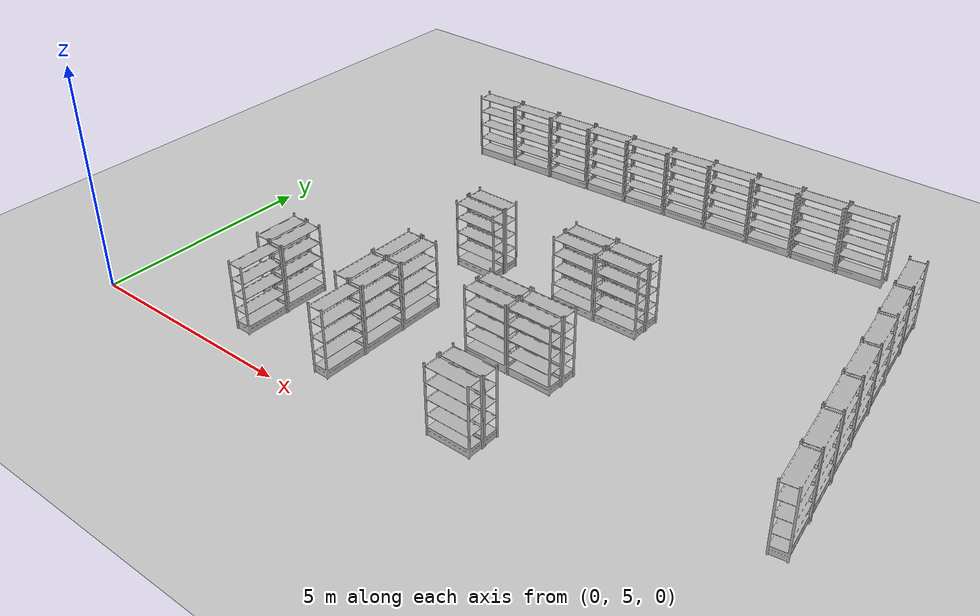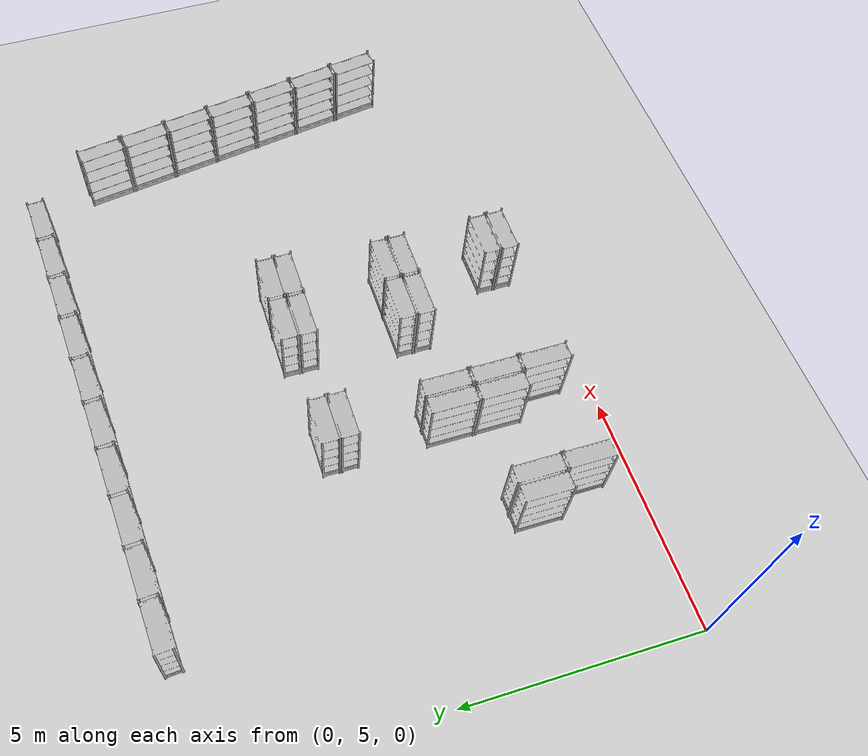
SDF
<sdf version="1.6">
 <world name="default">
  <model name="ground_plane">
   <static>1</static>
   <link name="link">
    <collision name="collision">
     <geometry><plane><normal>0 0 1</normal><size>100 100</size></plane></geometry>
     <surface>
      <contact><collide_bitmask>65535</collide_bitmask></contact>
      <friction><ode><mu>1000</mu><mu2>1000</mu2></ode></friction>
     </surface>
    </collision>
    <visual name="visual">
     <cast_shadows>0</cast_shadows>
     <geometry><plane><normal>0 0 1</normal><size>100 100</size></plane></geometry>
     <material>
      <script><uri>file://media/materials/scripts/gazebo.material</uri><name>Gazebo/Grey</name></script>
     </material>
    </visual>
   </link>
  </model>
  <model name="store_shelf_moduled_16">
   <link name="link">
    <collision name="collision">
     <geometry><mesh><uri>model://store_shelf_moduled/meshes/store_shelf_moduled.dae</uri></mesh></geometry>
    </collision>
    <visual name="visual">
     <geometry><mesh><uri>model://store_shelf_moduled/meshes/store_shelf_moduled.dae</uri></mesh></geometry>
    </visual>
    <inertial>
     <mass>1000</mass>
     <inertia>
      <ixx>840083</ixx>
      <ixy>0</ixy>
      <ixz>0</ixz>
      <iyy>475500</iyy>
      <iyz>0</iyz>
      <izz>1.30208e+06</izz>
     </inertia>
    </inertial>
   </link>
   <static>1</static>
   <pose>14.93118 7.014704 0 0 0 1.724357</pose>
  </model>
  <model name="store_shelf_moduled_17">
   <link name="link">
    <collision name="collision">
     <geometry><mesh><uri>model://store_shelf_moduled/meshes/store_shelf_moduled.dae</uri></mesh></geometry>
    </collision>
    <visual name="visual">
     <geometry><mesh><uri>model://store_shelf_moduled/meshes/store_shelf_moduled.dae</uri></mesh></geometry>
    </visual>
    <inertial>
     <mass>1000</mass>
     <inertia>
      <ixx>840083</ixx>
      <ixy>0</ixy>
      <ixz>0</ixz>
      <iyy>475500</iyy>
      <iyz>0</iyz>
      <izz>1.30208e+06</izz>
     </inertia>
    </inertial>
   </link>
   <static>1</static>
   <pose>14.77118 8.064704 0 0 0 1.724357</pose>
  </model>
  <model name="store_shelf_moduled_18">
   <link name="link">
    <collision name="collision">
     <geometry><mesh><uri>model://store_shelf_moduled/meshes/store_shelf_moduled.dae</uri></mesh></geometry>
    </collision>
    <visual name="visual">
     <geometry><mesh><uri>model://store_shelf_moduled/meshes/store_shelf_moduled.dae</uri></mesh></geometry>
    </visual>
    <inertial>
     <mass>1000</mass>
     <inertia>
      <ixx>840083</ixx>
      <ixy>0</ixy>
      <ixz>0</ixz>
      <iyy>475500</iyy>
      <iyz>0</iyz>
      <izz>1.30208e+06</izz>
     </inertia>
    </inertial>
   </link>
   <static>1</static>
   <pose>14.61118 9.114704 0 0 0 1.724357</pose>
  </model>
  <model name="store_shelf_moduled_19">
   <link name="link">
    <collision name="collision">
     <geometry><mesh><uri>model://store_shelf_moduled/meshes/store_shelf_moduled.dae</uri></mesh></geometry>
    </collision>
    <visual name="visual">
     <geometry><mesh><uri>model://store_shelf_moduled/meshes/store_shelf_moduled.dae</uri></mesh></geometry>
    </visual>
    <inertial>
     <mass>1000</mass>
     <inertia>
      <ixx>840083</ixx>
      <ixy>0</ixy>
      <ixz>0</ixz>
      <iyy>475500</iyy>
      <iyz>0</iyz>
      <izz>1.30208e+06</izz>
     </inertia>
    </inertial>
   </link>
   <static>1</static>
   <pose>14.45118 10.1647 0 0 0 1.724357</pose>
  </model>
  <model name="store_shelf_moduled_20">
   <link name="link">
    <collision name="collision">
     <geometry><mesh><uri>model://store_shelf_moduled/meshes/store_shelf_moduled.dae</uri></mesh></geometry>
    </collision>
    <visual name="visual">
     <geometry><mesh><uri>model://store_shelf_moduled/meshes/store_shelf_moduled.dae</uri></mesh></geometry>
    </visual>
    <inertial>
     <mass>1000</mass>
     <inertia>
      <ixx>840083</ixx>
      <ixy>0</ixy>
      <ixz>0</ixz>
      <iyy>475500</iyy>
      <iyz>0</iyz>
      <izz>1.30208e+06</izz>
     </inertia>
    </inertial>
   </link>
   <static>1</static>
   <pose>14.29118 11.2047 0 0 0 1.724357</pose>
  </model>
  <model name="store_shelf_moduled_21">
   <link name="link">
    <collision name="collision">
     <geometry><mesh><uri>model://store_shelf_moduled/meshes/store_shelf_moduled.dae</uri></mesh></geometry>
    </collision>
    <visual name="visual">
     <geometry><mesh><uri>model://store_shelf_moduled/meshes/store_shelf_moduled.dae</uri></mesh></geometry>
    </visual>
    <inertial>
     <mass>1000</mass>
     <inertia>
      <ixx>840083</ixx>
      <ixy>0</ixy>
      <ixz>0</ixz>
      <iyy>475500</iyy>
      <iyz>0</iyz>
      <izz>1.30208e+06</izz>
     </inertia>
    </inertial>
   </link>
   <static>1</static>
   <pose>14.12118 12.2547 0 0 0 1.724357</pose>
  </model>
  <model name="store_shelf_moduled_22">
   <link name="link">
    <collision name="collision">
     <geometry><mesh><uri>model://store_shelf_moduled/meshes/store_shelf_moduled.dae</uri></mesh></geometry>
    </collision>
    <visual name="visual">
     <geometry><mesh><uri>model://store_shelf_moduled/meshes/store_shelf_moduled.dae</uri></mesh></geometry>
    </visual>
    <inertial>
     <mass>1000</mass>
     <inertia>
      <ixx>840083</ixx>
      <ixy>0</ixy>
      <ixz>0</ixz>
      <iyy>475500</iyy>
      <iyz>0</iyz>
      <izz>1.30208e+06</izz>
     </inertia>
    </inertial>
   </link>
   <static>1</static>
   <pose>13.96118 13.3047 0 0 0 1.724357</pose>
  </model>
  <model name="store_shelf_moduled_23">
   <link name="link">
    <collision name="collision">
     <geometry><mesh><uri>model://store_shelf_moduled/meshes/store_shelf_moduled.dae</uri></mesh></geometry>
    </collision>
    <visual name="visual">
     <geometry><mesh><uri>model://store_shelf_moduled/meshes/store_shelf_moduled.dae</uri></mesh></geometry>
    </visual>
    <inertial>
     <mass>1000</mass>
     <inertia>
      <ixx>840083</ixx>
      <ixy>0</ixy>
      <ixz>0</ixz>
      <iyy>475500</iyy>
      <iyz>0</iyz>
      <izz>1.30208e+06</izz>
     </inertia>
    </inertial>
   </link>
   <static>1</static>
   <pose>12.62632 15.6502 0 0 0 -3.078349</pose>
  </model>
  <model name="store_shelf_moduled_24">
   <link name="link">
    <collision name="collision">
     <geometry><mesh><uri>model://store_shelf_moduled/meshes/store_shelf_moduled.dae</uri></mesh></geometry>
    </collision>
    <visual name="visual">
     <geometry><mesh><uri>model://store_shelf_moduled/meshes/store_shelf_moduled.dae</uri></mesh></geometry>
    </visual>
    <inertial>
     <mass>1000</mass>
     <inertia>
      <ixx>840083</ixx>
      <ixy>0</ixy>
      <ixz>0</ixz>
      <iyy>475500</iyy>
      <iyz>0</iyz>
      <izz>1.30208e+06</izz>
     </inertia>
    </inertial>
   </link>
   <static>1</static>
   <pose>11.56632 15.5802 0 0 0 -3.078349</pose>
  </model>
  <model name="store_shelf_moduled_25">
   <link name="link">
    <collision name="collision">
     <geometry><mesh><uri>model://store_shelf_moduled/meshes/store_shelf_moduled.dae</uri></mesh></geometry>
    </collision>
    <visual name="visual">
     <geometry><mesh><uri>model://store_shelf_moduled/meshes/store_shelf_moduled.dae</uri></mesh></geometry>
    </visual>
    <inertial>
     <mass>1000</mass>
     <inertia>
      <ixx>840083</ixx>
      <ixy>0</ixy>
      <ixz>0</ixz>
      <iyy>475500</iyy>
      <iyz>0</iyz>
      <izz>1.30208e+06</izz>
     </inertia>
    </inertial>
   </link>
   <static>1</static>
   <pose>10.50632 15.5102 0 0 0 -3.078349</pose>
  </model>
  <model name="store_shelf_moduled_26">
   <link name="link">
    <collision name="collision">
     <geometry><mesh><uri>model://store_shelf_moduled/meshes/store_shelf_moduled.dae</uri></mesh></geometry>
    </collision>
    <visual name="visual">
     <geometry><mesh><uri>model://store_shelf_moduled/meshes/store_shelf_moduled.dae</uri></mesh></geometry>
    </visual>
    <inertial>
     <mass>1000</mass>
     <inertia>
      <ixx>840083</ixx>
      <ixy>0</ixy>
      <ixz>0</ixz>
      <iyy>475500</iyy>
      <iyz>0</iyz>
      <izz>1.30208e+06</izz>
     </inertia>
    </inertial>
   </link>
   <static>1</static>
   <pose>9.446321 15.4502 0 0 0 -3.078349</pose>
  </model>
  <model name="store_shelf_moduled_27">
   <link name="link">
    <collision name="collision">
     <geometry><mesh><uri>model://store_shelf_moduled/meshes/store_shelf_moduled.dae</uri></mesh></geometry>
    </collision>
    <visual name="visual">
     <geometry><mesh><uri>model://store_shelf_moduled/meshes/store_shelf_moduled.dae</uri></mesh></geometry>
    </visual>
    <inertial>
     <mass>1000</mass>
     <inertia>
      <ixx>840083</ixx>
      <ixy>0</ixy>
      <ixz>0</ixz>
      <iyy>475500</iyy>
      <iyz>0</iyz>
      <izz>1.30208e+06</izz>
     </inertia>
    </inertial>
   </link>
   <static>1</static>
   <pose>8.39632 15.3802 0 0 0 -3.078349</pose>
  </model>
  <model name="store_shelf_moduled_28">
   <link name="link">
    <collision name="collision">
     <geometry><mesh><uri>model://store_shelf_moduled/meshes/store_shelf_moduled.dae</uri></mesh></geometry>
    </collision>
    <visual name="visual">
     <geometry><mesh><uri>model://store_shelf_moduled/meshes/store_shelf_moduled.dae</uri></mesh></geometry>
    </visual>
    <inertial>
     <mass>1000</mass>
     <inertia>
      <ixx>840083</ixx>
      <ixy>0</ixy>
      <ixz>0</ixz>
      <iyy>475500</iyy>
      <iyz>0</iyz>
      <izz>1.30208e+06</izz>
     </inertia>
    </inertial>
   </link>
   <static>1</static>
   <pose>7.33632 15.3102 0 0 0 -3.078349</pose>
  </model>
  <model name="store_shelf_moduled_29">
   <link name="link">
    <collision name="collision">
     <geometry><mesh><uri>model://store_shelf_moduled/meshes/store_shelf_moduled.dae</uri></mesh></geometry>
    </collision>
    <visual name="visual">
     <geometry><mesh><uri>model://store_shelf_moduled/meshes/store_shelf_moduled.dae</uri></mesh></geometry>
    </visual>
    <inertial>
     <mass>1000</mass>
     <inertia>
      <ixx>840083</ixx>
      <ixy>0</ixy>
      <ixz>0</ixz>
      <iyy>475500</iyy>
      <iyz>0</iyz>
      <izz>1.30208e+06</izz>
     </inertia>
    </inertial>
   </link>
   <static>1</static>
   <pose>6.27632 15.2502 0 0 0 -3.078349</pose>
  </model>
  <model name="store_shelf_moduled_30">
   <link name="link">
    <collision name="collision">
     <geometry><mesh><uri>model://store_shelf_moduled/meshes/store_shelf_moduled.dae</uri></mesh></geometry>
    </collision>
    <visual name="visual">
     <geometry><mesh><uri>model://store_shelf_moduled/meshes/store_shelf_moduled.dae</uri></mesh></geometry>
    </visual>
    <inertial>
     <mass>1000</mass>
     <inertia>
      <ixx>840083</ixx>
      <ixy>0</ixy>
      <ixz>0</ixz>
      <iyy>475500</iyy>
      <iyz>0</iyz>
      <izz>1.30208e+06</izz>
     </inertia>
    </inertial>
   </link>
   <static>1</static>
   <pose>5.21632 15.1802 0 0 0 -3.078349</pose>
  </model>
  <model name="store_shelf_moduled_31">
   <link name="link">
    <collision name="collision">
     <geometry><mesh><uri>model://store_shelf_moduled/meshes/store_shelf_moduled.dae</uri></mesh></geometry>
    </collision>
    <visual name="visual">
     <geometry><mesh><uri>model://store_shelf_moduled/meshes/store_shelf_moduled.dae</uri></mesh></geometry>
    </visual>
    <inertial>
     <mass>1000</mass>
     <inertia>
      <ixx>840083</ixx>
      <ixy>0</ixy>
      <ixz>0</ixz>
      <iyy>475500</iyy>
      <iyz>0</iyz>
      <izz>1.30208e+06</izz>
     </inertia>
    </inertial>
   </link>
   <static>1</static>
   <pose>4.15632 15.1102 0 0 0 -3.078349</pose>
  </model>
  <model name="store_shelf_moduled_32">
   <link name="link">
    <collision name="collision">
     <geometry><mesh><uri>model://store_shelf_moduled/meshes/store_shelf_moduled.dae</uri></mesh></geometry>
    </collision>
    <visual name="visual">
     <geometry><mesh><uri>model://store_shelf_moduled/meshes/store_shelf_moduled.dae</uri></mesh></geometry>
    </visual>
    <inertial>
     <mass>1000</mass>
     <inertia>
      <ixx>840083</ixx>
      <ixy>0</ixy>
      <ixz>0</ixz>
      <iyy>475500</iyy>
      <iyz>0</iyz>
      <izz>1.30208e+06</izz>
     </inertia>
    </inertial>
   </link>
   <static>1</static>
   <pose>3.10632 15.0502 0 0 0 -3.078349</pose>
  </model>
  <model name="store_shelf_moduled_36">
   <link name="link">
    <collision name="collision">
     <geometry><mesh><uri>model://store_shelf_moduled/meshes/store_shelf_moduled.dae</uri></mesh></geometry>
    </collision>
    <visual name="visual">
     <geometry><mesh><uri>model://store_shelf_moduled/meshes/store_shelf_moduled.dae</uri></mesh></geometry>
    </visual>
    <inertial>
     <mass>1000</mass>
     <inertia>
      <ixx>840083</ixx>
      <ixy>0</ixy>
      <ixz>0</ixz>
      <iyy>475500</iyy>
      <iyz>0</iyz>
      <izz>1.30208e+06</izz>
     </inertia>
    </inertial>
   </link>
   <static>1</static>
   <pose>3.25 6.7 0 0 0 -1.570796</pose>
  </model>
  <model name="store_shelf_moduled_37">
   <link name="link">
    <collision name="collision">
     <geometry><mesh><uri>model://store_shelf_moduled/meshes/store_shelf_moduled.dae</uri></mesh></geometry>
    </collision>
    <visual name="visual">
     <geometry><mesh><uri>model://store_shelf_moduled/meshes/store_shelf_moduled.dae</uri></mesh></geometry>
    </visual>
    <inertial>
     <mass>1000</mass>
     <inertia>
      <ixx>840083</ixx>
      <ixy>0</ixy>
      <ixz>0</ixz>
      <iyy>475500</iyy>
      <iyz>0</iyz>
      <izz>1.30208e+06</izz>
     </inertia>
    </inertial>
   </link>
   <static>1</static>
   <pose>3.25 6.7 0 0 0 1.570796</pose>
  </model>
  <model name="store_shelf_moduled_38">
   <link name="link">
    <collision name="collision">
     <geometry><mesh><uri>model://store_shelf_moduled/meshes/store_shelf_moduled.dae</uri></mesh></geometry>
    </collision>
    <visual name="visual">
     <geometry><mesh><uri>model://store_shelf_moduled/meshes/store_shelf_moduled.dae</uri></mesh></geometry>
    </visual>
    <inertial>
     <mass>1000</mass>
     <inertia>
      <ixx>840083</ixx>
      <ixy>0</ixy>
      <ixz>0</ixz>
      <iyy>475500</iyy>
      <iyz>0</iyz>
      <izz>1.30208e+06</izz>
     </inertia>
    </inertial>
   </link>
   <static>1</static>
   <pose>3.25 7.76 0 0 0 -1.570796</pose>
  </model>
  <model name="store_shelf_moduled_39">
   <link name="link">
    <collision name="collision">
     <geometry><mesh><uri>model://store_shelf_moduled/meshes/store_shelf_moduled.dae</uri></mesh></geometry>
    </collision>
    <visual name="visual">
     <geometry><mesh><uri>model://store_shelf_moduled/meshes/store_shelf_moduled.dae</uri></mesh></geometry>
    </visual>
    <inertial>
     <mass>1000</mass>
     <inertia>
      <ixx>840083</ixx>
      <ixy>0</ixy>
      <ixz>0</ixz>
      <iyy>475500</iyy>
      <iyz>0</iyz>
      <izz>1.30208e+06</izz>
     </inertia>
    </inertial>
   </link>
   <static>1</static>
   <pose>5.09 10.66 0 0 0 0</pose>
  </model>
  <model name="store_shelf_moduled_40">
   <link name="link">
    <collision name="collision">
     <geometry><mesh><uri>model://store_shelf_moduled/meshes/store_shelf_moduled.dae</uri></mesh></geometry>
    </collision>
    <visual name="visual">
     <geometry><mesh><uri>model://store_shelf_moduled/meshes/store_shelf_moduled.dae</uri></mesh></geometry>
    </visual>
    <inertial>
     <mass>1000</mass>
     <inertia>
      <ixx>840083</ixx>
      <ixy>0</ixy>
      <ixz>0</ixz>
      <iyy>475500</iyy>
      <iyz>0</iyz>
      <izz>1.30208e+06</izz>
     </inertia>
    </inertial>
   </link>
   <static>1</static>
   <pose>6.15 10.66 0 0 0 -3.141593</pose>
  </model>
  <model name="store_shelf_moduled_41">
   <link name="link">
    <collision name="collision">
     <geometry><mesh><uri>model://store_shelf_moduled/meshes/store_shelf_moduled.dae</uri></mesh></geometry>
    </collision>
    <visual name="visual">
     <geometry><mesh><uri>model://store_shelf_moduled/meshes/store_shelf_moduled.dae</uri></mesh></geometry>
    </visual>
    <inertial>
     <mass>1000</mass>
     <inertia>
      <ixx>840083</ixx>
      <ixy>0</ixy>
      <ixz>0</ixz>
      <iyy>475500</iyy>
      <iyz>0</iyz>
      <izz>1.30208e+06</izz>
     </inertia>
    </inertial>
   </link>
   <static>1</static>
   <pose>7.57 10.8 0 0 0 0</pose>
  </model>
  <model name="store_shelf_moduled_42">
   <link name="link">
    <collision name="collision">
     <geometry><mesh><uri>model://store_shelf_moduled/meshes/store_shelf_moduled.dae</uri></mesh></geometry>
    </collision>
    <visual name="visual">
     <geometry><mesh><uri>model://store_shelf_moduled/meshes/store_shelf_moduled.dae</uri></mesh></geometry>
    </visual>
    <inertial>
     <mass>1000</mass>
     <inertia>
      <ixx>840083</ixx>
      <ixy>0</ixy>
      <ixz>0</ixz>
      <iyy>475500</iyy>
      <iyz>0</iyz>
      <izz>1.30208e+06</izz>
     </inertia>
    </inertial>
   </link>
   <static>1</static>
   <pose>8.63 10.8 0 0 0 -3.141593</pose>
  </model>
  <model name="store_shelf_moduled_43">
   <link name="link">
    <collision name="collision">
     <geometry><mesh><uri>model://store_shelf_moduled/meshes/store_shelf_moduled.dae</uri></mesh></geometry>
    </collision>
    <visual name="visual">
     <geometry><mesh><uri>model://store_shelf_moduled/meshes/store_shelf_moduled.dae</uri></mesh></geometry>
    </visual>
    <inertial>
     <mass>1000</mass>
     <inertia>
      <ixx>840083</ixx>
      <ixy>0</ixy>
      <ixz>0</ixz>
      <iyy>475500</iyy>
      <iyz>0</iyz>
      <izz>1.30208e+06</izz>
     </inertia>
    </inertial>
   </link>
   <static>1</static>
   <pose>8.63 10.8 0 0 0 0</pose>
  </model>
  <model name="store_shelf_moduled_44">
   <link name="link">
    <collision name="collision">
     <geometry><mesh><uri>model://store_shelf_moduled/meshes/store_shelf_moduled.dae</uri></mesh></geometry>
    </collision>
    <visual name="visual">
     <geometry><mesh><uri>model://store_shelf_moduled/meshes/store_shelf_moduled.dae</uri></mesh></geometry>
    </visual>
    <inertial>
     <mass>1000</mass>
     <inertia>
      <ixx>840083</ixx>
      <ixy>0</ixy>
      <ixz>0</ixz>
      <iyy>475500</iyy>
      <iyz>0</iyz>
      <izz>1.30208e+06</izz>
     </inertia>
    </inertial>
   </link>
   <static>1</static>
   <pose>9.69 10.8 0 0 0 -3.141593</pose>
  </model>
  <model name="store_shelf_moduled_56">
   <link name="link">
    <collision name="collision">
     <geometry><mesh><uri>model://store_shelf_moduled/meshes/store_shelf_moduled.dae</uri></mesh></geometry>
    </collision>
    <visual name="visual">
     <geometry><mesh><uri>model://store_shelf_moduled/meshes/store_shelf_moduled.dae</uri></mesh></geometry>
    </visual>
    <inertial>
     <mass>1000</mass>
     <inertia>
      <ixx>840083</ixx>
      <ixy>0</ixy>
      <ixz>0</ixz>
      <iyy>475500</iyy>
      <iyz>0</iyz>
      <izz>1.30208e+06</izz>
     </inertia>
    </inertial>
   </link>
   <static>1</static>
   <pose>5.51 6.7 0 0 0 -1.570796</pose>
  </model>
  <model name="store_shelf_moduled_57">
   <link name="link">
    <collision name="collision">
     <geometry><mesh><uri>model://store_shelf_moduled/meshes/store_shelf_moduled.dae</uri></mesh></geometry>
    </collision>
    <visual name="visual">
     <geometry><mesh><uri>model://store_shelf_moduled/meshes/store_shelf_moduled.dae</uri></mesh></geometry>
    </visual>
    <inertial>
     <mass>1000</mass>
     <inertia>
      <ixx>840083</ixx>
      <ixy>0</ixy>
      <ixz>0</ixz>
      <iyy>475500</iyy>
      <iyz>0</iyz>
      <izz>1.30208e+06</izz>
     </inertia>
    </inertial>
   </link>
   <static>1</static>
   <pose>5.51 6.7 0 0 0 1.570796</pose>
  </model>
  <model name="store_shelf_moduled_58">
   <link name="link">
    <collision name="collision">
     <geometry><mesh><uri>model://store_shelf_moduled/meshes/store_shelf_moduled.dae</uri></mesh></geometry>
    </collision>
    <visual name="visual">
     <geometry><mesh><uri>model://store_shelf_moduled/meshes/store_shelf_moduled.dae</uri></mesh></geometry>
    </visual>
    <inertial>
     <mass>1000</mass>
     <inertia>
      <ixx>840083</ixx>
      <ixy>0</ixy>
      <ixz>0</ixz>
      <iyy>475500</iyy>
      <iyz>0</iyz>
      <izz>1.30208e+06</izz>
     </inertia>
    </inertial>
   </link>
   <static>1</static>
   <pose>5.51 7.76 0 0 0 -1.570796</pose>
  </model>
  <model name="store_shelf_moduled_59">
   <link name="link">
    <collision name="collision">
     <geometry><mesh><uri>model://store_shelf_moduled/meshes/store_shelf_moduled.dae</uri></mesh></geometry>
    </collision>
    <visual name="visual">
     <geometry><mesh><uri>model://store_shelf_moduled/meshes/store_shelf_moduled.dae</uri></mesh></geometry>
    </visual>
    <inertial>
     <mass>1000</mass>
     <inertia>
      <ixx>840083</ixx>
      <ixy>0</ixy>
      <ixz>0</ixz>
      <iyy>475500</iyy>
      <iyz>0</iyz>
      <izz>1.30208e+06</izz>
     </inertia>
    </inertial>
   </link>
   <static>1</static>
   <pose>5.51 7.76 0 0 0 1.570796</pose>
  </model>
  <model name="store_shelf_moduled_60">
   <link name="link">
    <collision name="collision">
     <geometry><mesh><uri>model://store_shelf_moduled/meshes/store_shelf_moduled.dae</uri></mesh></geometry>
    </collision>
    <visual name="visual">
     <geometry><mesh><uri>model://store_shelf_moduled/meshes/store_shelf_moduled.dae</uri></mesh></geometry>
    </visual>
    <inertial>
     <mass>1000</mass>
     <inertia>
      <ixx>840083</ixx>
      <ixy>0</ixy>
      <ixz>0</ixz>
      <iyy>475500</iyy>
      <iyz>0</iyz>
      <izz>1.30208e+06</izz>
     </inertia>
    </inertial>
   </link>
   <static>1</static>
   <pose>5.51 8.82 0 0 0 -1.570796</pose>
  </model>
  <model name="store_shelf_moduled_63">
   <link name="link">
    <collision name="collision">
     <geometry><mesh><uri>model://store_shelf_moduled/meshes/store_shelf_moduled.dae</uri></mesh></geometry>
    </collision>
    <visual name="visual">
     <geometry><mesh><uri>model://store_shelf_moduled/meshes/store_shelf_moduled.dae</uri></mesh></geometry>
    </visual>
    <inertial>
     <mass>1000</mass>
     <inertia>
      <ixx>840083</ixx>
      <ixy>0</ixy>
      <ixz>0</ixz>
      <iyy>475500</iyy>
      <iyz>0</iyz>
      <izz>1.30208e+06</izz>
     </inertia>
    </inertial>
   </link>
   <static>1</static>
   <pose>8.41 6.06 0 0 0 0</pose>
  </model>
  <model name="store_shelf_moduled_64">
   <link name="link">
    <collision name="collision">
     <geometry><mesh><uri>model://store_shelf_moduled/meshes/store_shelf_moduled.dae</uri></mesh></geometry>
    </collision>
    <visual name="visual">
     <geometry><mesh><uri>model://store_shelf_moduled/meshes/store_shelf_moduled.dae</uri></mesh></geometry>
    </visual>
    <inertial>
     <mass>1000</mass>
     <inertia>
      <ixx>840083</ixx>
      <ixy>0</ixy>
      <ixz>0</ixz>
      <iyy>475500</iyy>
      <iyz>0</iyz>
      <izz>1.30208e+06</izz>
     </inertia>
    </inertial>
   </link>
   <static>1</static>
   <pose>9.47 6.06 0 0 0 -3.141593</pose>
  </model>
  <model name="store_shelf_moduled_65">
   <link name="link">
    <collision name="collision">
     <geometry><mesh><uri>model://store_shelf_moduled/meshes/store_shelf_moduled.dae</uri></mesh></geometry>
    </collision>
    <visual name="visual">
     <geometry><mesh><uri>model://store_shelf_moduled/meshes/store_shelf_moduled.dae</uri></mesh></geometry>
    </visual>
    <inertial>
     <mass>1000</mass>
     <inertia>
      <ixx>840083</ixx>
      <ixy>0</ixy>
      <ixz>0</ixz>
      <iyy>475500</iyy>
      <iyz>0</iyz>
      <izz>1.30208e+06</izz>
     </inertia>
    </inertial>
   </link>
   <static>1</static>
   <pose>7.35 8.32 0 0 0 0</pose>
  </model>
  <model name="store_shelf_moduled_66">
   <link name="link">
    <collision name="collision">
     <geometry><mesh><uri>model://store_shelf_moduled/meshes/store_shelf_moduled.dae</uri></mesh></geometry>
    </collision>
    <visual name="visual">
     <geometry><mesh><uri>model://store_shelf_moduled/meshes/store_shelf_moduled.dae</uri></mesh></geometry>
    </visual>
    <inertial>
     <mass>1000</mass>
     <inertia>
      <ixx>840083</ixx>
      <ixy>0</ixy>
      <ixz>0</ixz>
      <iyy>475500</iyy>
      <iyz>0</iyz>
      <izz>1.30208e+06</izz>
     </inertia>
    </inertial>
   </link>
   <static>1</static>
   <pose>8.41 8.32 0 0 0 -3.141593</pose>
  </model>
  <model name="store_shelf_moduled_67">
   <link name="link">
    <collision name="collision">
     <geometry><mesh><uri>model://store_shelf_moduled/meshes/store_shelf_moduled.dae</uri></mesh></geometry>
    </collision>
    <visual name="visual">
     <geometry><mesh><uri>model://store_shelf_moduled/meshes/store_shelf_moduled.dae</uri></mesh></geometry>
    </visual>
    <inertial>
     <mass>1000</mass>
     <inertia>
      <ixx>840083</ixx>
      <ixy>0</ixy>
      <ixz>0</ixz>
      <iyy>475500</iyy>
      <iyz>0</iyz>
      <izz>1.30208e+06</izz>
     </inertia>
    </inertial>
   </link>
   <static>1</static>
   <pose>8.41 8.32 0 0 0 0</pose>
  </model>
  <model name="store_shelf_moduled_68">
   <link name="link">
    <collision name="collision">
     <geometry><mesh><uri>model://store_shelf_moduled/meshes/store_shelf_moduled.dae</uri></mesh></geometry>
    </collision>
    <visual name="visual">
     <geometry><mesh><uri>model://store_shelf_moduled/meshes/store_shelf_moduled.dae</uri></mesh></geometry>
    </visual>
    <inertial>
     <mass>1000</mass>
     <inertia>
      <ixx>840083</ixx>
      <ixy>0</ixy>
      <ixz>0</ixz>
      <iyy>475500</iyy>
      <iyz>0</iyz>
      <izz>1.30208e+06</izz>
     </inertia>
    </inertial>
   </link>
   <static>1</static>
   <pose>9.47 8.32 0 0 0 -3.141593</pose>
  </model>
 </world>
</sdf>
